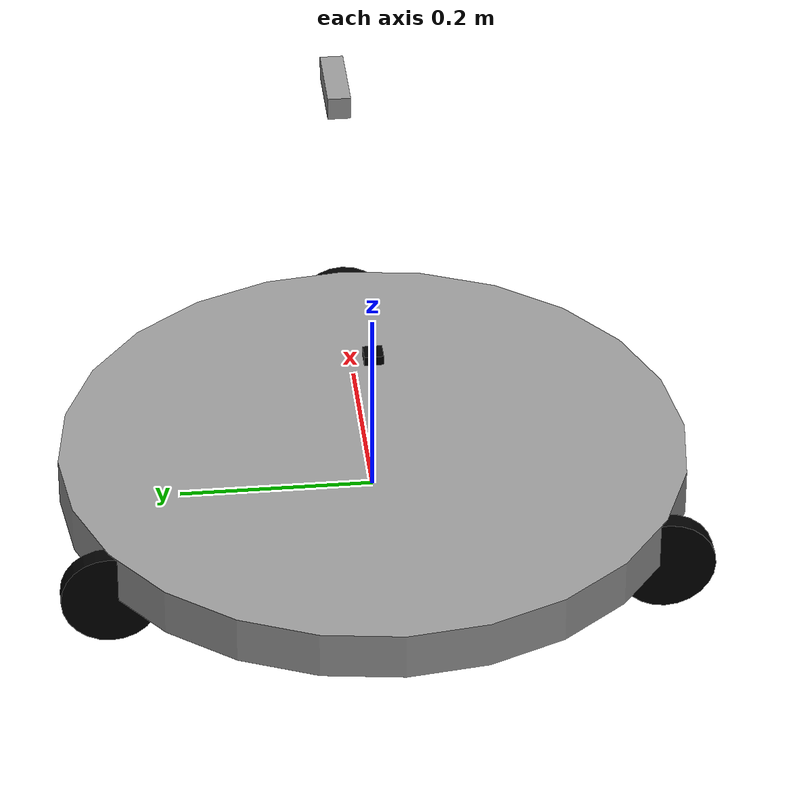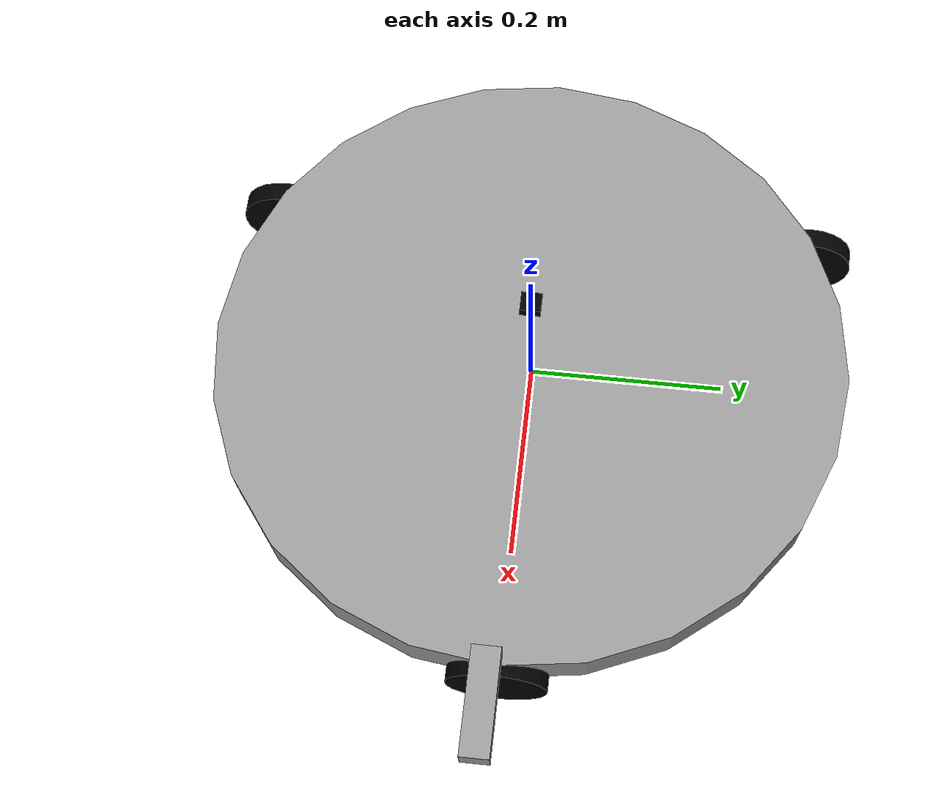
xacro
<?xml version="1.0"?>
<robot xmlns:xacro="http://ros.org/wiki/xacro" name="omni_robot">

  <!-- === Parameters === -->
  <xacro:property name="robot_radius" value="0.325"/> <!-- 65cm diameter -->
  <xacro:property name="base_height" value="0.05"/>
  <xacro:property name="wheel_radius" value="0.05"/>
  <xacro:property name="wheel_thickness" value="0.02"/>

  <!-- === Materials === -->
  <material name="gray"><color rgba="0.6 0.6 0.6 1"/></material>
  <material name="black"><color rgba="0 0 0 1"/></material>

  <!-- === Base Footprint === -->
  <link name="base_footprint"/>
  <joint name="base_footprint_joint" type="fixed">
    <parent link="base_footprint"/>
    <child link="base_link"/>
    <origin xyz="0 0 0" rpy="0 0 0"/>
  </joint>

  <!-- === Base Link === -->
  <link name="base_link">
    <visual>
      <geometry>
        <cylinder radius="${robot_radius}" length="${base_height}"/>
      </geometry>
      <origin xyz="0 0 ${base_height / 2}" rpy="0 0 0"/>
      <material name="gray"/>
    </visual>
    <collision>
      <geometry>
        <cylinder radius="${robot_radius}" length="${base_height}"/>
      </geometry>
      <origin xyz="0 0 ${base_height / 2}" rpy="0 0 0"/>
    </collision>
    <inertial>
      <mass value="5.0"/>
      <origin xyz="0 0 ${base_height / 2}" rpy="0 0 0"/>
      <inertia ixx="0.1" iyy="0.1" izz="0.1" ixy="0.0" ixz="0.0" iyz="0.0"/>
    </inertial>
  </link>

  <!-- === Wheel Macro === -->
  <xacro:macro name="omni_wheel" params="name angle_deg">
    <xacro:property name="x" value="${robot_radius * cos(angle_deg * pi / 180.0)}"/>
    <xacro:property name="y" value="${robot_radius * sin(angle_deg * pi / 180.0)}"/>

    <link name="${name}_link">
      <visual>
        <geometry>
          <cylinder radius="${wheel_radius}" length="${wheel_thickness}"/>
        </geometry>
        <origin xyz="0 0 0" rpy="0 1.5708 0"/>
        <material name="black"/>
      </visual>
      <collision>
        <geometry>
          <cylinder radius="${wheel_radius}" length="${wheel_thickness}"/>
        </geometry>
        <origin xyz="0 0 0" rpy="0 1.5708 0"/>
      </collision>
      <inertial>
        <mass value="0.5"/>
        <origin xyz="0 0 0" rpy="0 0 0"/>
        <inertia ixx="0.01" iyy="0.01" izz="0.01" ixy="0" ixz="0" iyz="0"/>
      </inertial>
    </link>

    <joint name="${name}_joint" type="revolute">
      <parent link="base_link"/>
      <child link="${name}_link"/>
      <origin xyz="${x} ${y} 0" rpy="0 0 0"/>
      <axis xyz="0 0 1"/>
      <limit effort="1.0" velocity="10.0" lower="-3.14" upper="3.14"/>
    </joint>
  </xacro:macro>

  <!-- === Omni Wheels: 3 positions === -->
  <xacro:omni_wheel name="wheel_front" angle_deg="0"/>
  <xacro:omni_wheel name="wheel_left"  angle_deg="120"/>
  <xacro:omni_wheel name="wheel_right" angle_deg="240"/>

  <!-- === IMU Link === -->
  <link name="imu_link">
    <visual>
      <geometry><box size="0.02 0.02 0.01"/></geometry>
      <origin xyz="0 0 0.08" rpy="0 0 0"/>
      <material name="black"/>
    </visual>
  </link>

  <joint name="imu_joint" type="fixed">
    <parent link="base_link"/>
    <child link="imu_link"/>
    <origin xyz="0 0 0.08" rpy="0 0 0"/>
  </joint>

  <!-- === Camera Link (Intel RealSense D455) === -->
  <link name="camera_link">
    <visual>
      <geometry><box size="0.09 0.025 0.025"/></geometry>
      <origin xyz="0.2 0 0.12" rpy="0 0 0"/>
      <material name="gray"/>
    </visual>
  </link>

  <joint name="camera_joint" type="fixed">
    <parent link="base_link"/>
    <child link="camera_link"/>
    <origin xyz="0.2 0 0.12" rpy="0 0 0"/>
  </joint>

</robot>
